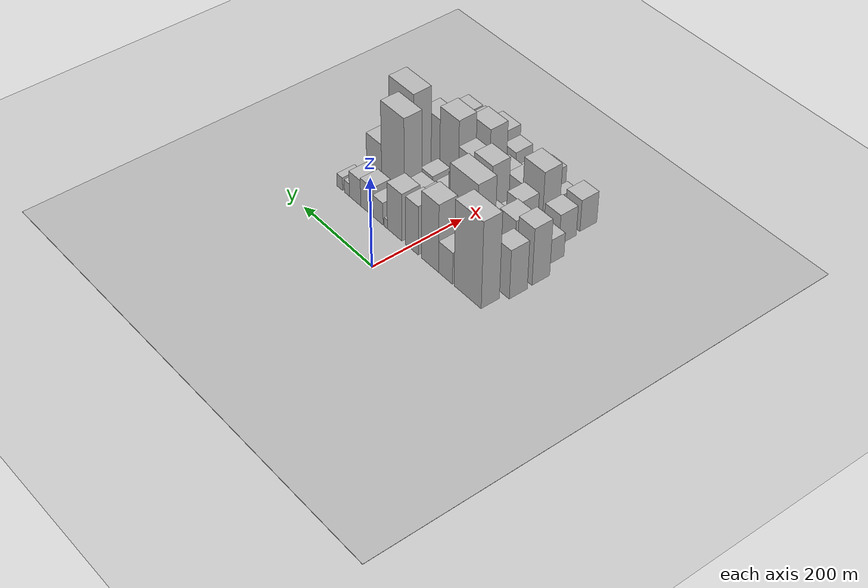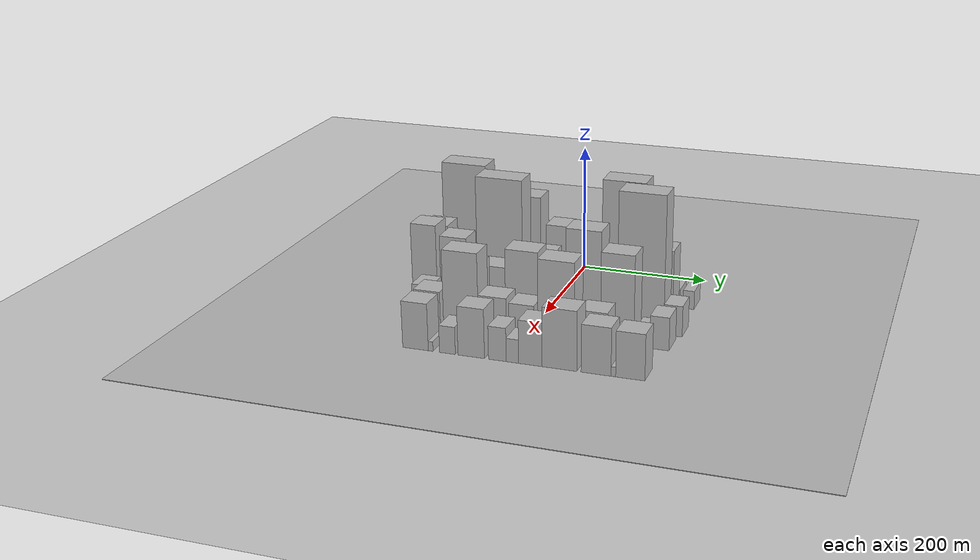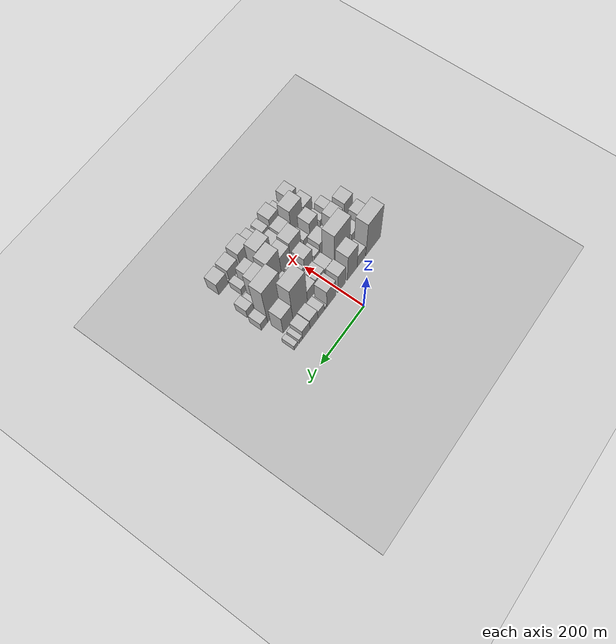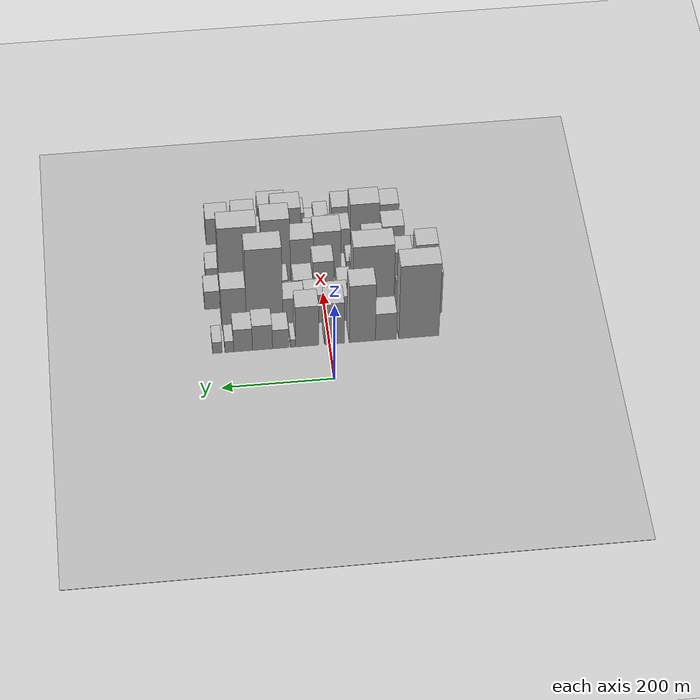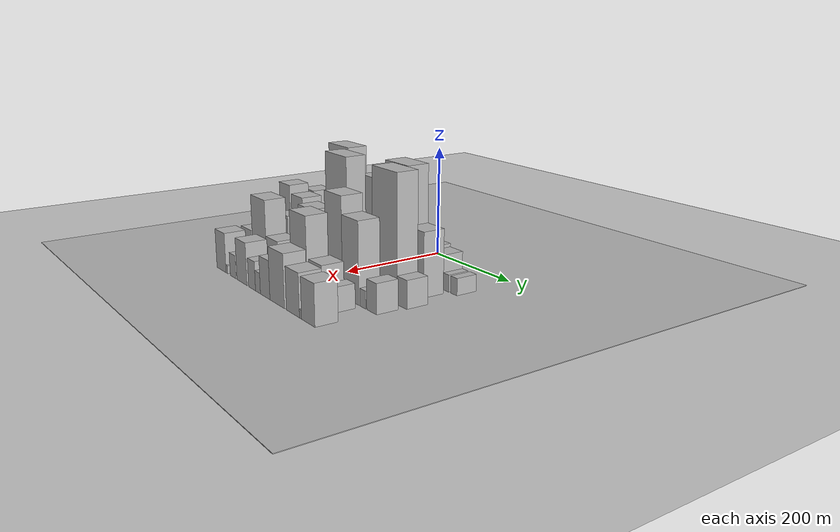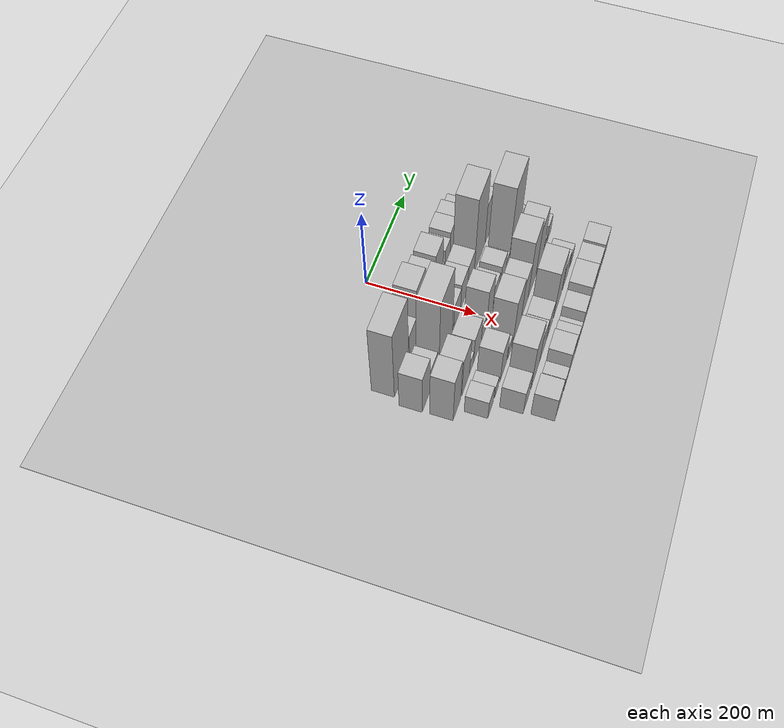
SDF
<sdf version="1.6">
 <world name="default">
  <include><name>ground_plane_1</name><uri>model://HANNAS_ground_plane</uri></include>
  <include>
   <name>ground_plane_2</name>
   <uri>model://HANNAS_ground_plane</uri>
   <pose>100 0 0  0 0 0</pose>
  </include>
  <model name="building_23">
   <static>1</static>
   <pose>100.0000 -159.5477 0 0.000000 0.000000 0.000000</pose>
   <link name="link">
    <pose>0 0 97.50 0 0 0</pose>
    <collision name="collision"><geometry><box><size>40.0000 72.2253 195.0000</size></box></geometry></collision>
    <visual name="visual">
     <cast_shadows>0</cast_shadows>
     <geometry><box><size>40.0000 72.2253 195.0000</size></box></geometry>
     <material>
      <script>
       <uri>model://HANNAS_wall/materials/scripts</uri>
       <uri>model://HANNAS_wall/materials/textures</uri>
       <name>vrc/HANNAS_wall</name>
      </script>
     </material>
    </visual>
   </link>
  </model>
  <model name="building_24">
   <static>1</static>
   <pose>100.0000 -100.4327 0 0.000000 0.000000 0.000000</pose>
   <link name="link">
    <pose>0 0 36.00 0 0 0</pose>
    <collision name="collision"><geometry><box><size>40.0000 38.0046 72.0000</size></box></geometry></collision>
    <visual name="visual">
     <cast_shadows>0</cast_shadows>
     <geometry><box><size>40.0000 38.0046 72.0000</size></box></geometry>
     <material>
      <script>
       <uri>model://HANNAS_wall/materials/scripts</uri>
       <uri>model://HANNAS_wall/materials/textures</uri>
       <name>vrc/HANNAS_wall</name>
      </script>
     </material>
    </visual>
   </link>
  </model>
  <model name="building_25">
   <static>1</static>
   <pose>100.0000 -58.0178 0 0.000000 0.000000 0.000000</pose>
   <link name="link">
    <pose>0 0 76.50 0 0 0</pose>
    <collision name="collision"><geometry><box><size>40.0000 46.8252 153.0000</size></box></geometry></collision>
    <visual name="visual">
     <cast_shadows>0</cast_shadows>
     <geometry><box><size>40.0000 46.8252 153.0000</size></box></geometry>
     <material>
      <script>
       <uri>model://HANNAS_wall/materials/scripts</uri>
       <uri>model://HANNAS_wall/materials/textures</uri>
       <name>vrc/HANNAS_wall</name>
      </script>
     </material>
    </visual>
   </link>
  </model>
  <model name="building_26">
   <static>1</static>
   <pose>100.0000 -7.8596 0 0.000000 0.000000 0.000000</pose>
   <link name="link">
    <pose>0 0 55.50 0 0 0</pose>
    <collision name="collision"><geometry><box><size>40.0000 35.4911 111.0000</size></box></geometry></collision>
    <visual name="visual">
     <cast_shadows>0</cast_shadows>
     <geometry><box><size>40.0000 35.4911 111.0000</size></box></geometry>
     <material>
      <script>
       <uri>model://HANNAS_wall/materials/scripts</uri>
       <uri>model://HANNAS_wall/materials/textures</uri>
       <name>vrc/HANNAS_wall</name>
      </script>
     </material>
    </visual>
   </link>
  </model>
  <model name="building_27">
   <static>1</static>
   <pose>100.0000 40.7392 0 0.000000 0.000000 0.000000</pose>
   <link name="link">
    <pose>0 0 54.00 0 0 0</pose>
    <collision name="collision"><geometry><box><size>40.0000 41.7065 108.0000</size></box></geometry></collision>
    <visual name="visual">
     <cast_shadows>0</cast_shadows>
     <geometry><box><size>40.0000 41.7065 108.0000</size></box></geometry>
     <material>
      <script>
       <uri>model://HANNAS_wall/materials/scripts</uri>
       <uri>model://HANNAS_wall/materials/textures</uri>
       <name>vrc/HANNAS_wall</name>
      </script>
     </material>
    </visual>
   </link>
  </model>
  <model name="building_28">
   <static>1</static>
   <pose>100.0000 66.1730 0 0.000000 0.000000 0.000000</pose>
   <link name="link">
    <pose>0 0 10.50 0 0 0</pose>
    <collision name="collision"><geometry><box><size>40.0000 9.1613 21.0000</size></box></geometry></collision>
    <visual name="visual">
     <cast_shadows>0</cast_shadows>
     <geometry><box><size>40.0000 9.1613 21.0000</size></box></geometry>
     <material>
      <script>
       <uri>model://HANNAS_wall/materials/scripts</uri>
       <uri>model://HANNAS_wall/materials/textures</uri>
       <name>vrc/HANNAS_wall</name>
      </script>
     </material>
    </visual>
   </link>
  </model>
  <model name="building_29">
   <static>1</static>
   <pose>100.0000 88.3548 0 0.000000 0.000000 0.000000</pose>
   <link name="link">
    <pose>0 0 25.50 0 0 0</pose>
    <collision name="collision"><geometry><box><size>40.0000 29.2023 51.0000</size></box></geometry></collision>
    <visual name="visual">
     <cast_shadows>0</cast_shadows>
     <geometry><box><size>40.0000 29.2023 51.0000</size></box></geometry>
     <material>
      <script>
       <uri>model://HANNAS_wall/materials/scripts</uri>
       <uri>model://HANNAS_wall/materials/textures</uri>
       <name>vrc/HANNAS_wall</name>
      </script>
     </material>
    </visual>
   </link>
  </model>
  <model name="building_30">
   <static>1</static>
   <pose>100.0000 120.8287 0 0.000000 0.000000 0.000000</pose>
   <link name="link">
    <pose>0 0 33.00 0 0 0</pose>
    <collision name="collision"><geometry><box><size>40.0000 35.7455 66.0000</size></box></geometry></collision>
    <visual name="visual">
     <cast_shadows>0</cast_shadows>
     <geometry><box><size>40.0000 35.7455 66.0000</size></box></geometry>
     <material>
      <script>
       <uri>model://HANNAS_wall/materials/scripts</uri>
       <uri>model://HANNAS_wall/materials/textures</uri>
       <name>vrc/HANNAS_wall</name>
      </script>
     </material>
    </visual>
   </link>
  </model>
  <model name="building_31">
   <static>1</static>
   <pose>100.0000 155.4661 0 0.000000 0.000000 0.000000</pose>
   <link name="link">
    <pose>0 0 30.00 0 0 0</pose>
    <collision name="collision"><geometry><box><size>40.0000 33.5295 60.0000</size></box></geometry></collision>
    <visual name="visual">
     <cast_shadows>0</cast_shadows>
     <geometry><box><size>40.0000 33.5295 60.0000</size></box></geometry>
     <material>
      <script>
       <uri>model://HANNAS_wall/materials/scripts</uri>
       <uri>model://HANNAS_wall/materials/textures</uri>
       <name>vrc/HANNAS_wall</name>
      </script>
     </material>
    </visual>
   </link>
  </model>
  <model name="building_32">
   <static>1</static>
   <pose>100.0000 179.9575 0 0.000000 0.000000 0.000000</pose>
   <link name="link">
    <pose>0 0 15.00 0 0 0</pose>
    <collision name="collision"><geometry><box><size>40.0000 15.4532 30.0000</size></box></geometry></collision>
    <visual name="visual">
     <cast_shadows>0</cast_shadows>
     <geometry><box><size>40.0000 15.4532 30.0000</size></box></geometry>
     <material>
      <script>
       <uri>model://HANNAS_wall/materials/scripts</uri>
       <uri>model://HANNAS_wall/materials/textures</uri>
       <name>vrc/HANNAS_wall</name>
      </script>
     </material>
    </visual>
   </link>
  </model>
  <model name="building_33">
   <static>1</static>
   <pose>100.0000 201.2121 0 0.000000 0.000000 0.000000</pose>
   <link name="link">
    <pose>0 0 15.00 0 0 0</pose>
    <collision name="collision"><geometry><box><size>40.0000 17.0561 30.0000</size></box></geometry></collision>
    <visual name="visual">
     <cast_shadows>0</cast_shadows>
     <geometry><box><size>40.0000 17.0561 30.0000</size></box></geometry>
     <material>
      <script>
       <uri>model://HANNAS_wall/materials/scripts</uri>
       <uri>model://HANNAS_wall/materials/textures</uri>
       <name>vrc/HANNAS_wall</name>
      </script>
     </material>
    </visual>
   </link>
  </model>
  <model name="building_77">
   <static>1</static>
   <pose>152.0000 -187.3278 0 0.000000 0.000000 0.000000</pose>
   <link name="link">
    <pose>0 0 55.50 0 0 0</pose>
    <collision name="collision"><geometry><box><size>40.0000 40.0598 111.0000</size></box></geometry></collision>
    <visual name="visual">
     <cast_shadows>0</cast_shadows>
     <geometry><box><size>40.0000 40.0598 111.0000</size></box></geometry>
     <material>
      <script>
       <uri>model://HANNAS_wall/materials/scripts</uri>
       <uri>model://HANNAS_wall/materials/textures</uri>
       <name>vrc/HANNAS_wall</name>
      </script>
     </material>
    </visual>
   </link>
  </model>
  <model name="building_78">
   <static>1</static>
   <pose>152.0000 -147.6420 0 0.000000 0.000000 0.000000</pose>
   <link name="link">
    <pose>0 0 33.00 0 0 0</pose>
    <collision name="collision"><geometry><box><size>40.0000 39.3119 66.0000</size></box></geometry></collision>
    <visual name="visual">
     <cast_shadows>0</cast_shadows>
     <geometry><box><size>40.0000 39.3119 66.0000</size></box></geometry>
     <material>
      <script>
       <uri>model://HANNAS_wall/materials/scripts</uri>
       <uri>model://HANNAS_wall/materials/textures</uri>
       <name>vrc/HANNAS_wall</name>
      </script>
     </material>
    </visual>
   </link>
  </model>
  <model name="building_79">
   <static>1</static>
   <pose>152.0000 -83.1456 0 0.000000 0.000000 0.000000</pose>
   <link name="link">
    <pose>0 0 97.50 0 0 0</pose>
    <collision name="collision"><geometry><box><size>40.0000 73.6807 195.0000</size></box></geometry></collision>
    <visual name="visual">
     <cast_shadows>0</cast_shadows>
     <geometry><box><size>40.0000 73.6807 195.0000</size></box></geometry>
     <material>
      <script>
       <uri>model://HANNAS_wall/materials/scripts</uri>
       <uri>model://HANNAS_wall/materials/textures</uri>
       <name>vrc/HANNAS_wall</name>
      </script>
     </material>
    </visual>
   </link>
  </model>
  <model name="building_80">
   <static>1</static>
   <pose>152.0000 -42.1324 0 0.000000 0.000000 0.000000</pose>
   <link name="link">
    <pose>0 0 9.00 0 0 0</pose>
    <collision name="collision"><geometry><box><size>40.0000 8.3459 18.0000</size></box></geometry></collision>
    <visual name="visual">
     <cast_shadows>0</cast_shadows>
     <geometry><box><size>40.0000 8.3459 18.0000</size></box></geometry>
     <material>
      <script>
       <uri>model://HANNAS_wall/materials/scripts</uri>
       <uri>model://HANNAS_wall/materials/textures</uri>
       <name>vrc/HANNAS_wall</name>
      </script>
     </material>
    </visual>
   </link>
  </model>
  <model name="building_81">
   <static>1</static>
   <pose>152.0000 -19.0368 0 0.000000 0.000000 0.000000</pose>
   <link name="link">
    <pose>0 0 33.00 0 0 0</pose>
    <collision name="collision"><geometry><box><size>40.0000 37.8453 66.0000</size></box></geometry></collision>
    <visual name="visual">
     <cast_shadows>0</cast_shadows>
     <geometry><box><size>40.0000 37.8453 66.0000</size></box></geometry>
     <material>
      <script>
       <uri>model://HANNAS_wall/materials/scripts</uri>
       <uri>model://HANNAS_wall/materials/textures</uri>
       <name>vrc/HANNAS_wall</name>
      </script>
     </material>
    </visual>
   </link>
  </model>
  <model name="building_82">
   <static>1</static>
   <pose>152.0000 20.0602 0 0.000000 0.000000 0.000000</pose>
   <link name="link">
    <pose>0 0 37.50 0 0 0</pose>
    <collision name="collision"><geometry><box><size>40.0000 40.3486 75.0000</size></box></geometry></collision>
    <visual name="visual">
     <cast_shadows>0</cast_shadows>
     <geometry><box><size>40.0000 40.3486 75.0000</size></box></geometry>
     <material>
      <script>
       <uri>model://HANNAS_wall/materials/scripts</uri>
       <uri>model://HANNAS_wall/materials/textures</uri>
       <name>vrc/HANNAS_wall</name>
      </script>
     </material>
    </visual>
   </link>
  </model>
  <model name="building_83">
   <static>1</static>
   <pose>152.0000 59.7744 0 0.000000 0.000000 0.000000</pose>
   <link name="link">
    <pose>0 0 36.00 0 0 0</pose>
    <collision name="collision"><geometry><box><size>40.0000 39.0799 72.0000</size></box></geometry></collision>
    <visual name="visual">
     <cast_shadows>0</cast_shadows>
     <geometry><box><size>40.0000 39.0799 72.0000</size></box></geometry>
     <material>
      <script>
       <uri>model://HANNAS_wall/materials/scripts</uri>
       <uri>model://HANNAS_wall/materials/textures</uri>
       <name>vrc/HANNAS_wall</name>
      </script>
     </material>
    </visual>
   </link>
  </model>
  <model name="building_84">
   <static>1</static>
   <pose>152.0000 112.0152 0 0.000000 0.000000 0.000000</pose>
   <link name="link">
    <pose>0 0 105.00 0 0 0</pose>
    <collision name="collision"><geometry><box><size>40.0000 65.4018 210.0000</size></box></geometry></collision>
    <visual name="visual">
     <cast_shadows>0</cast_shadows>
     <geometry><box><size>40.0000 65.4018 210.0000</size></box></geometry>
     <material>
      <script>
       <uri>model://HANNAS_wall/materials/scripts</uri>
       <uri>model://HANNAS_wall/materials/textures</uri>
       <name>vrc/HANNAS_wall</name>
      </script>
     </material>
    </visual>
   </link>
  </model>
  <model name="building_85">
   <static>1</static>
   <pose>152.0000 166.7514 0 0.000000 0.000000 0.000000</pose>
   <link name="link">
    <pose>0 0 55.50 0 0 0</pose>
    <collision name="collision"><geometry><box><size>40.0000 44.0705 111.0000</size></box></geometry></collision>
    <visual name="visual">
     <cast_shadows>0</cast_shadows>
     <geometry><box><size>40.0000 44.0705 111.0000</size></box></geometry>
     <material>
      <script>
       <uri>model://HANNAS_wall/materials/scripts</uri>
       <uri>model://HANNAS_wall/materials/textures</uri>
       <name>vrc/HANNAS_wall</name>
      </script>
     </material>
    </visual>
   </link>
  </model>
  <model name="building_130">
   <static>1</static>
   <pose>204.0000 -185.4571 0 0.000000 0.000000 0.000000</pose>
   <link name="link">
    <pose>0 0 64.50 0 0 0</pose>
    <collision name="collision"><geometry><box><size>40.0000 40.4703 129.0000</size></box></geometry></collision>
    <visual name="visual">
     <cast_shadows>0</cast_shadows>
     <geometry><box><size>40.0000 40.4703 129.0000</size></box></geometry>
     <material>
      <script>
       <uri>model://HANNAS_wall/materials/scripts</uri>
       <uri>model://HANNAS_wall/materials/textures</uri>
       <name>vrc/HANNAS_wall</name>
      </script>
     </material>
    </visual>
   </link>
  </model>
  <model name="building_131">
   <static>1</static>
   <pose>204.0000 -137.9912 0 0.000000 0.000000 0.000000</pose>
   <link name="link">
    <pose>0 0 57.00 0 0 0</pose>
    <collision name="collision"><geometry><box><size>40.0000 42.4616 114.0000</size></box></geometry></collision>
    <visual name="visual">
     <cast_shadows>0</cast_shadows>
     <geometry><box><size>40.0000 42.4616 114.0000</size></box></geometry>
     <material>
      <script>
       <uri>model://HANNAS_wall/materials/scripts</uri>
       <uri>model://HANNAS_wall/materials/textures</uri>
       <name>vrc/HANNAS_wall</name>
      </script>
     </material>
    </visual>
   </link>
  </model>
  <model name="building_132">
   <static>1</static>
   <pose>204.0000 -105.2883 0 0.000000 0.000000 0.000000</pose>
   <link name="link">
    <pose>0 0 19.50 0 0 0</pose>
    <collision name="collision"><geometry><box><size>40.0000 22.9442 39.0000</size></box></geometry></collision>
    <visual name="visual">
     <cast_shadows>0</cast_shadows>
     <geometry><box><size>40.0000 22.9442 39.0000</size></box></geometry>
     <material>
      <script>
       <uri>model://HANNAS_wall/materials/scripts</uri>
       <uri>model://HANNAS_wall/materials/textures</uri>
       <name>vrc/HANNAS_wall</name>
      </script>
     </material>
    </visual>
   </link>
  </model>
  <model name="building_133">
   <static>1</static>
   <pose>204.0000 -71.5558 0 0.000000 0.000000 0.000000</pose>
   <link name="link">
    <pose>0 0 37.50 0 0 0</pose>
    <collision name="collision"><geometry><box><size>40.0000 44.5209 75.0000</size></box></geometry></collision>
    <visual name="visual">
     <cast_shadows>0</cast_shadows>
     <geometry><box><size>40.0000 44.5209 75.0000</size></box></geometry>
     <material>
      <script>
       <uri>model://HANNAS_wall/materials/scripts</uri>
       <uri>model://HANNAS_wall/materials/textures</uri>
       <name>vrc/HANNAS_wall</name>
      </script>
     </material>
    </visual>
   </link>
  </model>
  <model name="building_134">
   <static>1</static>
   <pose>204.0000 -36.9188 0 0.000000 0.000000 0.000000</pose>
   <link name="link">
    <pose>0 0 21.00 0 0 0</pose>
    <collision name="collision"><geometry><box><size>40.0000 24.7530 42.0000</size></box></geometry></collision>
    <visual name="visual">
     <cast_shadows>0</cast_shadows>
     <geometry><box><size>40.0000 24.7530 42.0000</size></box></geometry>
     <material>
      <script>
       <uri>model://HANNAS_wall/materials/scripts</uri>
       <uri>model://HANNAS_wall/materials/textures</uri>
       <name>vrc/HANNAS_wall</name>
      </script>
     </material>
    </visual>
   </link>
  </model>
  <model name="building_135">
   <static>1</static>
   <pose>204.0000 1.3073 0 0.000000 0.000000 0.000000</pose>
   <link name="link">
    <pose>0 0 52.50 0 0 0</pose>
    <collision name="collision"><geometry><box><size>40.0000 37.6993 105.0000</size></box></geometry></collision>
    <visual name="visual">
     <cast_shadows>0</cast_shadows>
     <geometry><box><size>40.0000 37.6993 105.0000</size></box></geometry>
     <material>
      <script>
       <uri>model://HANNAS_wall/materials/scripts</uri>
       <uri>model://HANNAS_wall/materials/textures</uri>
       <name>vrc/HANNAS_wall</name>
      </script>
     </material>
    </visual>
   </link>
  </model>
  <model name="building_136">
   <static>1</static>
   <pose>204.0000 37.8370 0 0.000000 0.000000 0.000000</pose>
   <link name="link">
    <pose>0 0 30.00 0 0 0</pose>
    <collision name="collision"><geometry><box><size>40.0000 35.3601 60.0000</size></box></geometry></collision>
    <visual name="visual">
     <cast_shadows>0</cast_shadows>
     <geometry><box><size>40.0000 35.3601 60.0000</size></box></geometry>
     <material>
      <script>
       <uri>model://HANNAS_wall/materials/scripts</uri>
       <uri>model://HANNAS_wall/materials/textures</uri>
       <name>vrc/HANNAS_wall</name>
      </script>
     </material>
    </visual>
   </link>
  </model>
  <model name="building_137">
   <static>1</static>
   <pose>204.0000 81.4466 0 0.000000 0.000000 0.000000</pose>
   <link name="link">
    <pose>0 0 31.50 0 0 0</pose>
    <collision name="collision"><geometry><box><size>40.0000 33.8591 63.0000</size></box></geometry></collision>
    <visual name="visual">
     <cast_shadows>0</cast_shadows>
     <geometry><box><size>40.0000 33.8591 63.0000</size></box></geometry>
     <material>
      <script>
       <uri>model://HANNAS_wall/materials/scripts</uri>
       <uri>model://HANNAS_wall/materials/textures</uri>
       <name>vrc/HANNAS_wall</name>
      </script>
     </material>
    </visual>
   </link>
  </model>
  <model name="building_138">
   <static>1</static>
   <pose>204.0000 108.4858 0 0.000000 0.000000 0.000000</pose>
   <link name="link">
    <pose>0 0 18.00 0 0 0</pose>
    <collision name="collision"><geometry><box><size>40.0000 20.2193 36.0000</size></box></geometry></collision>
    <visual name="visual">
     <cast_shadows>0</cast_shadows>
     <geometry><box><size>40.0000 20.2193 36.0000</size></box></geometry>
     <material>
      <script>
       <uri>model://HANNAS_wall/materials/scripts</uri>
       <uri>model://HANNAS_wall/materials/textures</uri>
       <name>vrc/HANNAS_wall</name>
      </script>
     </material>
    </visual>
   </link>
  </model>
  <model name="building_139">
   <static>1</static>
   <pose>204.0000 153.5786 0 0.000000 0.000000 0.000000</pose>
   <link name="link">
    <pose>0 0 106.50 0 0 0</pose>
    <collision name="collision"><geometry><box><size>40.0000 69.9663 213.0000</size></box></geometry></collision>
    <visual name="visual">
     <cast_shadows>0</cast_shadows>
     <geometry><box><size>40.0000 69.9663 213.0000</size></box></geometry>
     <material>
      <script>
       <uri>model://HANNAS_wall/materials/scripts</uri>
       <uri>model://HANNAS_wall/materials/textures</uri>
       <name>vrc/HANNAS_wall</name>
      </script>
     </material>
    </visual>
   </link>
  </model>
  <model name="building_140">
   <static>1</static>
   <pose>204.0000 202.3532 0 0.000000 0.000000 0.000000</pose>
   <link name="link">
    <pose>0 0 24.00 0 0 0</pose>
    <collision name="collision"><geometry><box><size>40.0000 27.5829 48.0000</size></box></geometry></collision>
    <visual name="visual">
     <cast_shadows>0</cast_shadows>
     <geometry><box><size>40.0000 27.5829 48.0000</size></box></geometry>
     <material>
      <script>
       <uri>model://HANNAS_wall/materials/scripts</uri>
       <uri>model://HANNAS_wall/materials/textures</uri>
       <name>vrc/HANNAS_wall</name>
      </script>
     </material>
    </visual>
   </link>
  </model>
  <model name="building_181">
   <static>1</static>
   <pose>256.0000 -168.4324 0 0.000000 0.000000 0.000000</pose>
   <link name="link">
    <pose>0 0 27.00 0 0 0</pose>
    <collision name="collision"><geometry><box><size>40.0000 31.1220 54.0000</size></box></geometry></collision>
    <visual name="visual">
     <cast_shadows>0</cast_shadows>
     <geometry><box><size>40.0000 31.1220 54.0000</size></box></geometry>
     <material>
      <script>
       <uri>model://HANNAS_wall/materials/scripts</uri>
       <uri>model://HANNAS_wall/materials/textures</uri>
       <name>vrc/HANNAS_wall</name>
      </script>
     </material>
    </visual>
   </link>
  </model>
  <model name="building_182">
   <static>1</static>
   <pose>256.0000 -134.1859 0 0.000000 0.000000 0.000000</pose>
   <link name="link">
    <pose>0 0 18.00 0 0 0</pose>
    <collision name="collision"><geometry><box><size>40.0000 21.3708 36.0000</size></box></geometry></collision>
    <visual name="visual">
     <cast_shadows>0</cast_shadows>
     <geometry><box><size>40.0000 21.3708 36.0000</size></box></geometry>
     <material>
      <script>
       <uri>model://HANNAS_wall/materials/scripts</uri>
       <uri>model://HANNAS_wall/materials/textures</uri>
       <name>vrc/HANNAS_wall</name>
      </script>
     </material>
    </visual>
   </link>
  </model>
  <model name="building_183">
   <static>1</static>
   <pose>256.0000 -94.5051 0 0.000000 0.000000 0.000000</pose>
   <link name="link">
    <pose>0 0 48.00 0 0 0</pose>
    <collision name="collision"><geometry><box><size>40.0000 37.9908 96.0000</size></box></geometry></collision>
    <visual name="visual">
     <cast_shadows>0</cast_shadows>
     <geometry><box><size>40.0000 37.9908 96.0000</size></box></geometry>
     <material>
      <script>
       <uri>model://HANNAS_wall/materials/scripts</uri>
       <uri>model://HANNAS_wall/materials/textures</uri>
       <name>vrc/HANNAS_wall</name>
      </script>
     </material>
    </visual>
   </link>
  </model>
  <model name="building_184">
   <static>1</static>
   <pose>256.0000 -58.3246 0 0.000000 0.000000 0.000000</pose>
   <link name="link">
    <pose>0 0 21.00 0 0 0</pose>
    <collision name="collision"><geometry><box><size>40.0000 24.3701 42.0000</size></box></geometry></collision>
    <visual name="visual">
     <cast_shadows>0</cast_shadows>
     <geometry><box><size>40.0000 24.3701 42.0000</size></box></geometry>
     <material>
      <script>
       <uri>model://HANNAS_wall/materials/scripts</uri>
       <uri>model://HANNAS_wall/materials/textures</uri>
       <name>vrc/HANNAS_wall</name>
      </script>
     </material>
    </visual>
   </link>
  </model>
  <model name="building_185">
   <static>1</static>
   <pose>256.0000 -41.0752 0 0.000000 0.000000 0.000000</pose>
   <link name="link">
    <pose>0 0 10.50 0 0 0</pose>
    <collision name="collision"><geometry><box><size>40.0000 10.1288 21.0000</size></box></geometry></collision>
    <visual name="visual">
     <cast_shadows>0</cast_shadows>
     <geometry><box><size>40.0000 10.1288 21.0000</size></box></geometry>
     <material>
      <script>
       <uri>model://HANNAS_wall/materials/scripts</uri>
       <uri>model://HANNAS_wall/materials/textures</uri>
       <name>vrc/HANNAS_wall</name>
      </script>
     </material>
    </visual>
   </link>
  </model>
  <model name="building_186">
   <static>1</static>
   <pose>256.0000 -11.0732 0 0.000000 0.000000 0.000000</pose>
   <link name="link">
    <pose>0 0 63.00 0 0 0</pose>
    <collision name="collision"><geometry><box><size>40.0000 49.8751 126.0000</size></box></geometry></collision>
    <visual name="visual">
     <cast_shadows>0</cast_shadows>
     <geometry><box><size>40.0000 49.8751 126.0000</size></box></geometry>
     <material>
      <script>
       <uri>model://HANNAS_wall/materials/scripts</uri>
       <uri>model://HANNAS_wall/materials/textures</uri>
       <name>vrc/HANNAS_wall</name>
      </script>
     </material>
    </visual>
   </link>
  </model>
  <model name="building_187">
   <static>1</static>
   <pose>256.0000 35.0036 0 0.000000 0.000000 0.000000</pose>
   <link name="link">
    <pose>0 0 55.50 0 0 0</pose>
    <collision name="collision"><geometry><box><size>40.0000 42.2785 111.0000</size></box></geometry></collision>
    <visual name="visual">
     <cast_shadows>0</cast_shadows>
     <geometry><box><size>40.0000 42.2785 111.0000</size></box></geometry>
     <material>
      <script>
       <uri>model://HANNAS_wall/materials/scripts</uri>
       <uri>model://HANNAS_wall/materials/textures</uri>
       <name>vrc/HANNAS_wall</name>
      </script>
     </material>
    </visual>
   </link>
  </model>
  <model name="building_188">
   <static>1</static>
   <pose>256.0000 82.3636 0 0.000000 0.000000 0.000000</pose>
   <link name="link">
    <pose>0 0 84.00 0 0 0</pose>
    <collision name="collision"><geometry><box><size>40.0000 52.4415 168.0000</size></box></geometry></collision>
    <visual name="visual">
     <cast_shadows>0</cast_shadows>
     <geometry><box><size>40.0000 52.4415 168.0000</size></box></geometry>
     <material>
      <script>
       <uri>model://HANNAS_wall/materials/scripts</uri>
       <uri>model://HANNAS_wall/materials/textures</uri>
       <name>vrc/HANNAS_wall</name>
      </script>
     </material>
    </visual>
   </link>
  </model>
  <model name="building_189">
   <static>1</static>
   <pose>256.0000 133.2776 0 0.000000 0.000000 0.000000</pose>
   <link name="link">
    <pose>0 0 69.00 0 0 0</pose>
    <collision name="collision"><geometry><box><size>40.0000 49.3865 138.0000</size></box></geometry></collision>
    <visual name="visual">
     <cast_shadows>0</cast_shadows>
     <geometry><box><size>40.0000 49.3865 138.0000</size></box></geometry>
     <material>
      <script>
       <uri>model://HANNAS_wall/materials/scripts</uri>
       <uri>model://HANNAS_wall/materials/textures</uri>
       <name>vrc/HANNAS_wall</name>
      </script>
     </material>
    </visual>
   </link>
  </model>
  <model name="building_190">
   <static>1</static>
   <pose>256.0000 169.6329 0 0.000000 0.000000 0.000000</pose>
   <link name="link">
    <pose>0 0 15.00 0 0 0</pose>
    <collision name="collision"><geometry><box><size>40.0000 17.3240 30.0000</size></box></geometry></collision>
    <visual name="visual">
     <cast_shadows>0</cast_shadows>
     <geometry><box><size>40.0000 17.3240 30.0000</size></box></geometry>
     <material>
      <script>
       <uri>model://HANNAS_wall/materials/scripts</uri>
       <uri>model://HANNAS_wall/materials/textures</uri>
       <name>vrc/HANNAS_wall</name>
      </script>
     </material>
    </visual>
   </link>
  </model>
  <model name="building_191">
   <static>1</static>
   <pose>256.0000 195.4811 0 0.000000 0.000000 0.000000</pose>
   <link name="link">
    <pose>0 0 25.50 0 0 0</pose>
    <collision name="collision"><geometry><box><size>40.0000 28.3725 51.0000</size></box></geometry></collision>
    <visual name="visual">
     <cast_shadows>0</cast_shadows>
     <geometry><box><size>40.0000 28.3725 51.0000</size></box></geometry>
     <material>
      <script>
       <uri>model://HANNAS_wall/materials/scripts</uri>
       <uri>model://HANNAS_wall/materials/textures</uri>
       <name>vrc/HANNAS_wall</name>
      </script>
     </material>
    </visual>
   </link>
  </model>
  <model name="building_229">
   <static>1</static>
   <pose>308.0000 -137.5212 0 0.000000 0.000000 0.000000</pose>
   <link name="link">
    <pose>0 0 34.50 0 0 0</pose>
    <collision name="collision"><geometry><box><size>40.0000 40.5863 69.0000</size></box></geometry></collision>
    <visual name="visual">
     <cast_shadows>0</cast_shadows>
     <geometry><box><size>40.0000 40.5863 69.0000</size></box></geometry>
     <material>
      <script>
       <uri>model://HANNAS_wall/materials/scripts</uri>
       <uri>model://HANNAS_wall/materials/textures</uri>
       <name>vrc/HANNAS_wall</name>
      </script>
     </material>
    </visual>
   </link>
  </model>
  <model name="building_230">
   <static>1</static>
   <pose>308.0000 -85.3703 0 0.000000 0.000000 0.000000</pose>
   <link name="link">
    <pose>0 0 67.50 0 0 0</pose>
    <collision name="collision"><geometry><box><size>40.0000 53.7156 135.0000</size></box></geometry></collision>
    <visual name="visual">
     <cast_shadows>0</cast_shadows>
     <geometry><box><size>40.0000 53.7156 135.0000</size></box></geometry>
     <material>
      <script>
       <uri>model://HANNAS_wall/materials/scripts</uri>
       <uri>model://HANNAS_wall/materials/textures</uri>
       <name>vrc/HANNAS_wall</name>
      </script>
     </material>
    </visual>
   </link>
  </model>
  <model name="building_231">
   <static>1</static>
   <pose>308.0000 -37.2419 0 0.000000 0.000000 0.000000</pose>
   <link name="link">
    <pose>0 0 36.00 0 0 0</pose>
    <collision name="collision"><geometry><box><size>40.0000 42.5413 72.0000</size></box></geometry></collision>
    <visual name="visual">
     <cast_shadows>0</cast_shadows>
     <geometry><box><size>40.0000 42.5413 72.0000</size></box></geometry>
     <material>
      <script>
       <uri>model://HANNAS_wall/materials/scripts</uri>
       <uri>model://HANNAS_wall/materials/textures</uri>
       <name>vrc/HANNAS_wall</name>
      </script>
     </material>
    </visual>
   </link>
  </model>
  <model name="building_232">
   <static>1</static>
   <pose>308.0000 6.8654 0 0.000000 0.000000 0.000000</pose>
   <link name="link">
    <pose>0 0 33.00 0 0 0</pose>
    <collision name="collision"><geometry><box><size>40.0000 37.6733 66.0000</size></box></geometry></collision>
    <visual name="visual">
     <cast_shadows>0</cast_shadows>
     <geometry><box><size>40.0000 37.6733 66.0000</size></box></geometry>
     <material>
      <script>
       <uri>model://HANNAS_wall/materials/scripts</uri>
       <uri>model://HANNAS_wall/materials/textures</uri>
       <name>vrc/HANNAS_wall</name>
      </script>
     </material>
    </visual>
   </link>
  </model>
  <model name="building_233">
   <static>1</static>
   <pose>308.0000 58.5841 0 0.000000 0.000000 0.000000</pose>
   <link name="link">
    <pose>0 0 69.00 0 0 0</pose>
    <collision name="collision"><geometry><box><size>40.0000 53.7640 138.0000</size></box></geometry></collision>
    <visual name="visual">
     <cast_shadows>0</cast_shadows>
     <geometry><box><size>40.0000 53.7640 138.0000</size></box></geometry>
     <material>
      <script>
       <uri>model://HANNAS_wall/materials/scripts</uri>
       <uri>model://HANNAS_wall/materials/textures</uri>
       <name>vrc/HANNAS_wall</name>
      </script>
     </material>
    </visual>
   </link>
  </model>
  <model name="building_234">
   <static>1</static>
   <pose>308.0000 113.0560 0 0.000000 0.000000 0.000000</pose>
   <link name="link">
    <pose>0 0 34.50 0 0 0</pose>
    <collision name="collision"><geometry><box><size>40.0000 41.1797 69.0000</size></box></geometry></collision>
    <visual name="visual">
     <cast_shadows>0</cast_shadows>
     <geometry><box><size>40.0000 41.1797 69.0000</size></box></geometry>
     <material>
      <script>
       <uri>model://HANNAS_wall/materials/scripts</uri>
       <uri>model://HANNAS_wall/materials/textures</uri>
       <name>vrc/HANNAS_wall</name>
      </script>
     </material>
    </visual>
   </link>
  </model>
  <model name="building_235">
   <static>1</static>
   <pose>308.0000 154.7117 0 0.000000 0.000000 0.000000</pose>
   <link name="link">
    <pose>0 0 21.00 0 0 0</pose>
    <collision name="collision"><geometry><box><size>40.0000 24.1318 42.0000</size></box></geometry></collision>
    <visual name="visual">
     <cast_shadows>0</cast_shadows>
     <geometry><box><size>40.0000 24.1318 42.0000</size></box></geometry>
     <material>
      <script>
       <uri>model://HANNAS_wall/materials/scripts</uri>
       <uri>model://HANNAS_wall/materials/textures</uri>
       <name>vrc/HANNAS_wall</name>
      </script>
     </material>
    </visual>
   </link>
  </model>
  <model name="building_270">
   <static>1</static>
   <pose>360.0000 -134.4208 0 0.000000 0.000000 0.000000</pose>
   <link name="link">
    <pose>0 0 36.00 0 0 0</pose>
    <collision name="collision"><geometry><box><size>40.0000 39.3567 72.0000</size></box></geometry></collision>
    <visual name="visual">
     <cast_shadows>0</cast_shadows>
     <geometry><box><size>40.0000 39.3567 72.0000</size></box></geometry>
     <material>
      <script>
       <uri>model://HANNAS_wall/materials/scripts</uri>
       <uri>model://HANNAS_wall/materials/textures</uri>
       <name>vrc/HANNAS_wall</name>
      </script>
     </material>
    </visual>
   </link>
  </model>
  <model name="building_271">
   <static>1</static>
   <pose>360.0000 -111.1226 0 0.000000 0.000000 0.000000</pose>
   <link name="link">
    <pose>0 0 7.50 0 0 0</pose>
    <collision name="collision"><geometry><box><size>40.0000 7.2396 15.0000</size></box></geometry></collision>
    <visual name="visual">
     <cast_shadows>0</cast_shadows>
     <geometry><box><size>40.0000 7.2396 15.0000</size></box></geometry>
     <material>
      <script>
       <uri>model://HANNAS_wall/materials/scripts</uri>
       <uri>model://HANNAS_wall/materials/textures</uri>
       <name>vrc/HANNAS_wall</name>
      </script>
     </material>
    </visual>
   </link>
  </model>
  <model name="building_272">
   <static>1</static>
   <pose>360.0000 -85.5483 0 0.000000 0.000000 0.000000</pose>
   <link name="link">
    <pose>0 0 21.00 0 0 0</pose>
    <collision name="collision"><geometry><box><size>40.0000 23.9090 42.0000</size></box></geometry></collision>
    <visual name="visual">
     <cast_shadows>0</cast_shadows>
     <geometry><box><size>40.0000 23.9090 42.0000</size></box></geometry>
     <material>
      <script>
       <uri>model://HANNAS_wall/materials/scripts</uri>
       <uri>model://HANNAS_wall/materials/textures</uri>
       <name>vrc/HANNAS_wall</name>
      </script>
     </material>
    </visual>
   </link>
  </model>
  <model name="building_273">
   <static>1</static>
   <pose>360.0000 -49.6680 0 0.000000 0.000000 0.000000</pose>
   <link name="link">
    <pose>0 0 37.50 0 0 0</pose>
    <collision name="collision"><geometry><box><size>40.0000 39.8517 75.0000</size></box></geometry></collision>
    <visual name="visual">
     <cast_shadows>0</cast_shadows>
     <geometry><box><size>40.0000 39.8517 75.0000</size></box></geometry>
     <material>
      <script>
       <uri>model://HANNAS_wall/materials/scripts</uri>
       <uri>model://HANNAS_wall/materials/textures</uri>
       <name>vrc/HANNAS_wall</name>
      </script>
     </material>
    </visual>
   </link>
  </model>
  <model name="building_274">
   <static>1</static>
   <pose>360.0000 -10.5794 0 0.000000 0.000000 0.000000</pose>
   <link name="link">
    <pose>0 0 25.50 0 0 0</pose>
    <collision name="collision"><geometry><box><size>40.0000 26.3255 51.0000</size></box></geometry></collision>
    <visual name="visual">
     <cast_shadows>0</cast_shadows>
     <geometry><box><size>40.0000 26.3255 51.0000</size></box></geometry>
     <material>
      <script>
       <uri>model://HANNAS_wall/materials/scripts</uri>
       <uri>model://HANNAS_wall/materials/textures</uri>
       <name>vrc/HANNAS_wall</name>
      </script>
     </material>
    </visual>
   </link>
  </model>
  <model name="building_275">
   <static>1</static>
   <pose>360.0000 11.7062 0 0.000000 0.000000 0.000000</pose>
   <link name="link">
    <pose>0 0 18.00 0 0 0</pose>
    <collision name="collision"><geometry><box><size>40.0000 18.2458 36.0000</size></box></geometry></collision>
    <visual name="visual">
     <cast_shadows>0</cast_shadows>
     <geometry><box><size>40.0000 18.2458 36.0000</size></box></geometry>
     <material>
      <script>
       <uri>model://HANNAS_wall/materials/scripts</uri>
       <uri>model://HANNAS_wall/materials/textures</uri>
       <name>vrc/HANNAS_wall</name>
      </script>
     </material>
    </visual>
   </link>
  </model>
  <model name="building_276">
   <static>1</static>
   <pose>360.0000 38.0789 0 0.000000 0.000000 0.000000</pose>
   <link name="link">
    <pose>0 0 33.00 0 0 0</pose>
    <collision name="collision"><geometry><box><size>40.0000 34.4997 66.0000</size></box></geometry></collision>
    <visual name="visual">
     <cast_shadows>0</cast_shadows>
     <geometry><box><size>40.0000 34.4997 66.0000</size></box></geometry>
     <material>
      <script>
       <uri>model://HANNAS_wall/materials/scripts</uri>
       <uri>model://HANNAS_wall/materials/textures</uri>
       <name>vrc/HANNAS_wall</name>
      </script>
     </material>
    </visual>
   </link>
  </model>
  <model name="building_277">
   <static>1</static>
   <pose>360.0000 80.4958 0 0.000000 0.000000 0.000000</pose>
   <link name="link">
    <pose>0 0 45.00 0 0 0</pose>
    <collision name="collision"><geometry><box><size>40.0000 50.3342 90.0000</size></box></geometry></collision>
    <visual name="visual">
     <cast_shadows>0</cast_shadows>
     <geometry><box><size>40.0000 50.3342 90.0000</size></box></geometry>
     <material>
      <script>
       <uri>model://HANNAS_wall/materials/scripts</uri>
       <uri>model://HANNAS_wall/materials/textures</uri>
       <name>vrc/HANNAS_wall</name>
      </script>
     </material>
    </visual>
   </link>
  </model>
  <model name="building_278">
   <static>1</static>
   <pose>360.0000 133.0283 0 0.000000 0.000000 0.000000</pose>
   <link name="link">
    <pose>0 0 36.00 0 0 0</pose>
    <collision name="collision"><geometry><box><size>40.0000 42.7307 72.0000</size></box></geometry></collision>
    <visual name="visual">
     <cast_shadows>0</cast_shadows>
     <geometry><box><size>40.0000 42.7307 72.0000</size></box></geometry>
     <material>
      <script>
       <uri>model://HANNAS_wall/materials/scripts</uri>
       <uri>model://HANNAS_wall/materials/textures</uri>
       <name>vrc/HANNAS_wall</name>
      </script>
     </material>
    </visual>
   </link>
  </model>
  <model name="building_279">
   <static>1</static>
   <pose>360.0000 157.6292 0 0.000000 0.000000 0.000000</pose>
   <link name="link">
    <pose>0 0 7.50 0 0 0</pose>
    <collision name="collision"><geometry><box><size>40.0000 6.4711 15.0000</size></box></geometry></collision>
    <visual name="visual">
     <cast_shadows>0</cast_shadows>
     <geometry><box><size>40.0000 6.4711 15.0000</size></box></geometry>
     <material>
      <script>
       <uri>model://HANNAS_wall/materials/scripts</uri>
       <uri>model://HANNAS_wall/materials/textures</uri>
       <name>vrc/HANNAS_wall</name>
      </script>
     </material>
    </visual>
   </link>
  </model>
  <model name="building_280">
   <static>1</static>
   <pose>360.0000 181.4604 0 0.000000 0.000000 0.000000</pose>
   <link name="link">
    <pose>0 0 34.50 0 0 0</pose>
    <collision name="collision"><geometry><box><size>40.0000 41.1912 69.0000</size></box></geometry></collision>
    <visual name="visual">
     <cast_shadows>0</cast_shadows>
     <geometry><box><size>40.0000 41.1912 69.0000</size></box></geometry>
     <material>
      <script>
       <uri>model://HANNAS_wall/materials/scripts</uri>
       <uri>model://HANNAS_wall/materials/textures</uri>
       <name>vrc/HANNAS_wall</name>
      </script>
     </material>
    </visual>
   </link>
  </model>
 </world>
</sdf>
